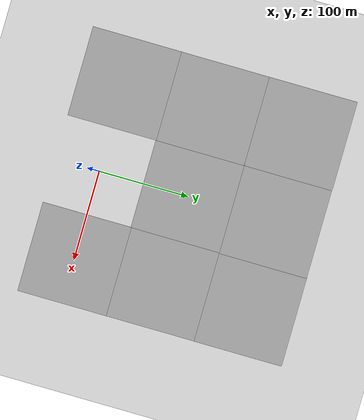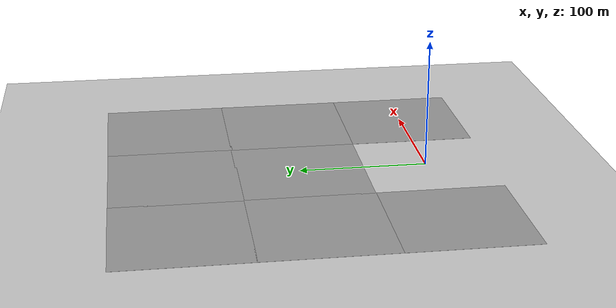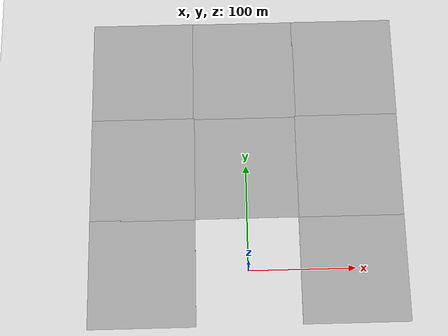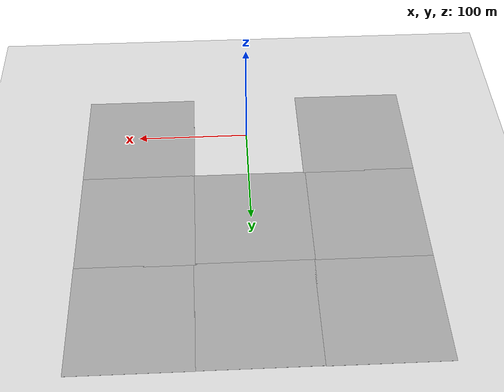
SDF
<sdf version="1.7">
 <world name="default">
  <light name="sun" type="directional">
   <pose>0 0 10 0 -0 0</pose>
   <diffuse>0.8 0.8 0.8 1</diffuse>
   <specular>0.2 0.2 0.2 1</specular>
   <attenuation>
    <range>1000</range>
    <constant>0.9</constant>
    <linear>0.01</linear>
    <quadratic>0.001</quadratic>
   </attenuation>
   <direction>-0.5 0.1 -0.9</direction>
   <spot><inner_angle>0</inner_angle><outer_angle>0</outer_angle><falloff>0</falloff></spot>
  </light>
  <model name="ground_plane">
   <static>1</static>
   <link name="link">
    <collision name="collision">
     <geometry><plane><normal>0 0 1</normal><size>100 100</size></plane></geometry>
     <surface>
      <contact><collide_bitmask>65535</collide_bitmask></contact>
      <friction><ode><mu>100</mu><mu2>50</mu2></ode></friction>
     </surface>
    </collision>
    <visual name="visual">
     <cast_shadows>0</cast_shadows>
     <geometry><plane><normal>0 0 1</normal><size>100 100</size></plane></geometry>
     <material>
      <script><uri>file://media/materials/scripts/gazebo.material</uri><name>Gazebo/Grey</name></script>
     </material>
    </visual>
   </link>
  </model>
  <gravity>0 0 -9.8</gravity>
  <magnetic_field>6e-06 2.3e-05 -4.2e-05</magnetic_field>
  <atmosphere type="adiabatic"/>
  <physics type="ode">
   <max_step_size>0.001</max_step_size>
   <real_time_factor>1</real_time_factor>
   <real_time_update_rate>1000</real_time_update_rate>
  </physics>
  <scene><ambient>0.4 0.4 0.4 1</ambient><background>0.7 0.7 0.7 1</background><shadows>1</shadows></scene>
  <spherical_coordinates>
   <surface_model>EARTH_WGS84</surface_model>
   <latitude_deg>0</latitude_deg>
   <longitude_deg>0</longitude_deg>
   <elevation>0</elevation>
   <heading_deg>0</heading_deg>
  </spherical_coordinates>
  <model name="ground_plane_0">
   <static>1</static>
   <link name="link">
    <collision name="collision">
     <geometry><plane><normal>0 0 1</normal><size>100 100</size></plane></geometry>
     <surface>
      <contact><collide_bitmask>65535</collide_bitmask></contact>
      <friction><ode><mu>100</mu><mu2>50</mu2></ode></friction>
     </surface>
    </collision>
    <visual name="visual">
     <cast_shadows>0</cast_shadows>
     <geometry><plane><normal>0 0 1</normal><size>100 100</size></plane></geometry>
     <material>
      <script><uri>file://media/materials/scripts/gazebo.material</uri><name>Gazebo/Grey</name></script>
     </material>
    </visual>
   </link>
   <pose>98.9189 0.268897 0 0 -0 0</pose>
  </model>
  <model name="ground_plane_1">
   <static>1</static>
   <link name="link">
    <collision name="collision">
     <geometry><plane><normal>0 0 1</normal><size>100 100</size></plane></geometry>
     <surface>
      <contact><collide_bitmask>65535</collide_bitmask></contact>
      <friction><ode><mu>100</mu><mu2>50</mu2></ode></friction>
     </surface>
    </collision>
    <visual name="visual">
     <cast_shadows>0</cast_shadows>
     <geometry><plane><normal>0 0 1</normal><size>100 100</size></plane></geometry>
     <material>
      <script><uri>file://media/materials/scripts/gazebo.material</uri><name>Gazebo/Grey</name></script>
     </material>
    </visual>
   </link>
   <pose>-99.2315 0.020787 0 0 -0 0</pose>
  </model>
  <model name="ground_plane_2">
   <static>1</static>
   <link name="link">
    <collision name="collision">
     <geometry><plane><normal>0 0 1</normal><size>100 100</size></plane></geometry>
     <surface>
      <contact><collide_bitmask>65535</collide_bitmask></contact>
      <friction><ode><mu>100</mu><mu2>50</mu2></ode></friction>
     </surface>
    </collision>
    <visual name="visual">
     <cast_shadows>0</cast_shadows>
     <geometry><plane><normal>0 0 1</normal><size>100 100</size></plane></geometry>
     <material>
      <script><uri>file://media/materials/scripts/gazebo.material</uri><name>Gazebo/Grey</name></script>
     </material>
    </visual>
   </link>
   <pose>-99.1392 99.0921 0 0 -0 0</pose>
  </model>
  <model name="ground_plane_3">
   <static>1</static>
   <link name="link">
    <collision name="collision">
     <geometry><plane><normal>0 0 1</normal><size>100 100</size></plane></geometry>
     <surface>
      <contact><collide_bitmask>65535</collide_bitmask></contact>
      <friction><ode><mu>100</mu><mu2>50</mu2></ode></friction>
     </surface>
    </collision>
    <visual name="visual">
     <cast_shadows>0</cast_shadows>
     <geometry><plane><normal>0 0 1</normal><size>100 100</size></plane></geometry>
     <material>
      <script><uri>file://media/materials/scripts/gazebo.material</uri><name>Gazebo/Grey</name></script>
     </material>
    </visual>
   </link>
   <pose>-0.790795 99.4575 0 0 -0 0</pose>
  </model>
  <model name="ground_plane_4">
   <static>1</static>
   <link name="link">
    <collision name="collision">
     <geometry><plane><normal>0 0 1</normal><size>100 100</size></plane></geometry>
     <surface>
      <contact><collide_bitmask>65535</collide_bitmask></contact>
      <friction><ode><mu>100</mu><mu2>50</mu2></ode></friction>
     </surface>
    </collision>
    <visual name="visual">
     <cast_shadows>0</cast_shadows>
     <geometry><plane><normal>0 0 1</normal><size>100 100</size></plane></geometry>
     <material>
      <script><uri>file://media/materials/scripts/gazebo.material</uri><name>Gazebo/Grey</name></script>
     </material>
    </visual>
   </link>
   <pose>98.8769 99.3612 0 0 -0 0</pose>
  </model>
  <model name="ground_plane_5">
   <static>1</static>
   <link name="link">
    <collision name="collision">
     <geometry><plane><normal>0 0 1</normal><size>100 100</size></plane></geometry>
     <surface>
      <contact><collide_bitmask>65535</collide_bitmask></contact>
      <friction><ode><mu>100</mu><mu2>50</mu2></ode></friction>
     </surface>
    </collision>
    <visual name="visual">
     <cast_shadows>0</cast_shadows>
     <geometry><plane><normal>0 0 1</normal><size>100 100</size></plane></geometry>
     <material>
      <script><uri>file://media/materials/scripts/gazebo.material</uri><name>Gazebo/Grey</name></script>
     </material>
    </visual>
   </link>
   <pose>-99.1542 198.486 0 0 -0 0</pose>
  </model>
  <model name="ground_plane_6">
   <static>1</static>
   <link name="link">
    <collision name="collision">
     <geometry><plane><normal>0 0 1</normal><size>100 100</size></plane></geometry>
     <surface>
      <contact><collide_bitmask>65535</collide_bitmask></contact>
      <friction><ode><mu>100</mu><mu2>50</mu2></ode></friction>
     </surface>
    </collision>
    <visual name="visual">
     <cast_shadows>0</cast_shadows>
     <geometry><plane><normal>0 0 1</normal><size>100 100</size></plane></geometry>
     <material>
      <script><uri>file://media/materials/scripts/gazebo.material</uri><name>Gazebo/Grey</name></script>
     </material>
    </visual>
   </link>
   <pose>-0.075912 198.148 0 0 -0 0</pose>
  </model>
  <model name="ground_plane_7">
   <static>1</static>
   <link name="link">
    <collision name="collision">
     <geometry><plane><normal>0 0 1</normal><size>100 100</size></plane></geometry>
     <surface>
      <contact><collide_bitmask>65535</collide_bitmask></contact>
      <friction><ode><mu>100</mu><mu2>50</mu2></ode></friction>
     </surface>
    </collision>
    <visual name="visual">
     <cast_shadows>0</cast_shadows>
     <geometry><plane><normal>0 0 1</normal><size>100 100</size></plane></geometry>
     <material>
      <script><uri>file://media/materials/scripts/gazebo.material</uri><name>Gazebo/Grey</name></script>
     </material>
    </visual>
   </link>
   <pose>99.0137 198.303 0 0 -0 0</pose>
  </model>
  <light name="sun" type="directional">
   <pose>-0.218163 0.23749 10 0 -0 0</pose>
   <diffuse>0.8 0.8 0.8 1</diffuse>
   <specular>0.2 0.2 0.2 1</specular>
   <attenuation>
    <range>1000</range>
    <constant>0.9</constant>
    <linear>0.01</linear>
    <quadratic>0.001</quadratic>
   </attenuation>
   <direction>-0.5 0.1 -0.9</direction>
  </light>
  <light name="sun" type="directional">
   <pose>0.015107 0.049701 10 0 -0 0</pose>
   <diffuse>0.8 0.8 0.8 1</diffuse>
   <specular>0.2 0.2 0.2 1</specular>
   <attenuation>
    <range>1000</range>
    <constant>0.9</constant>
    <linear>0.01</linear>
    <quadratic>0.001</quadratic>
   </attenuation>
   <direction>-0.5 0.1 -0.9</direction>
  </light>
 </world>
</sdf>
